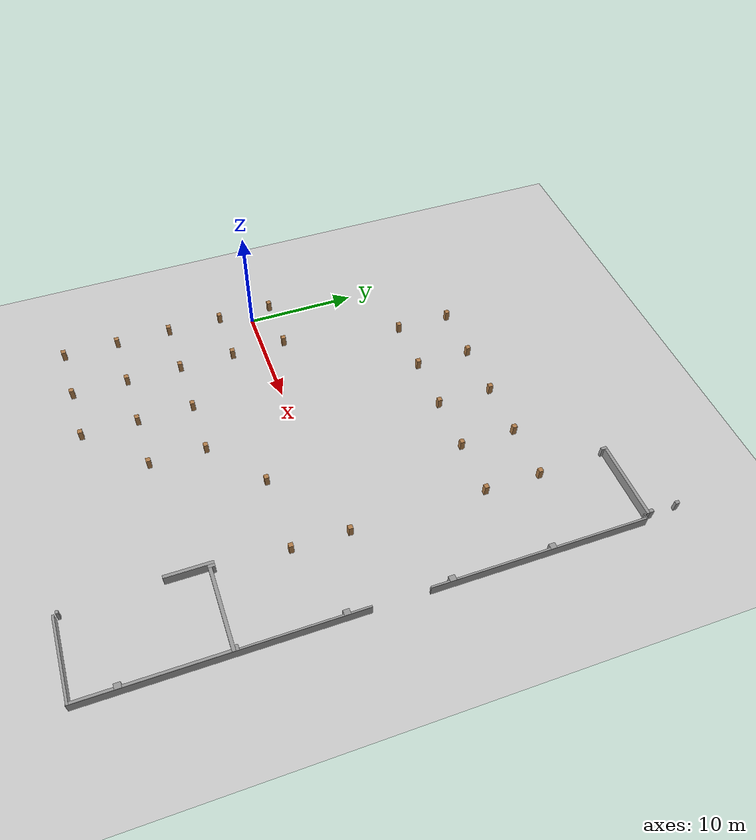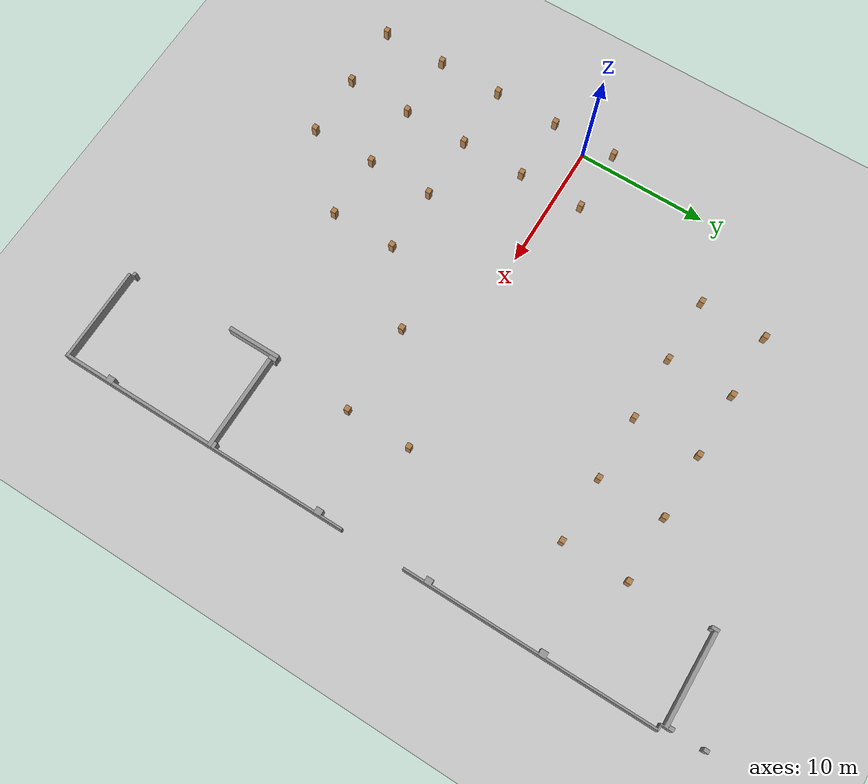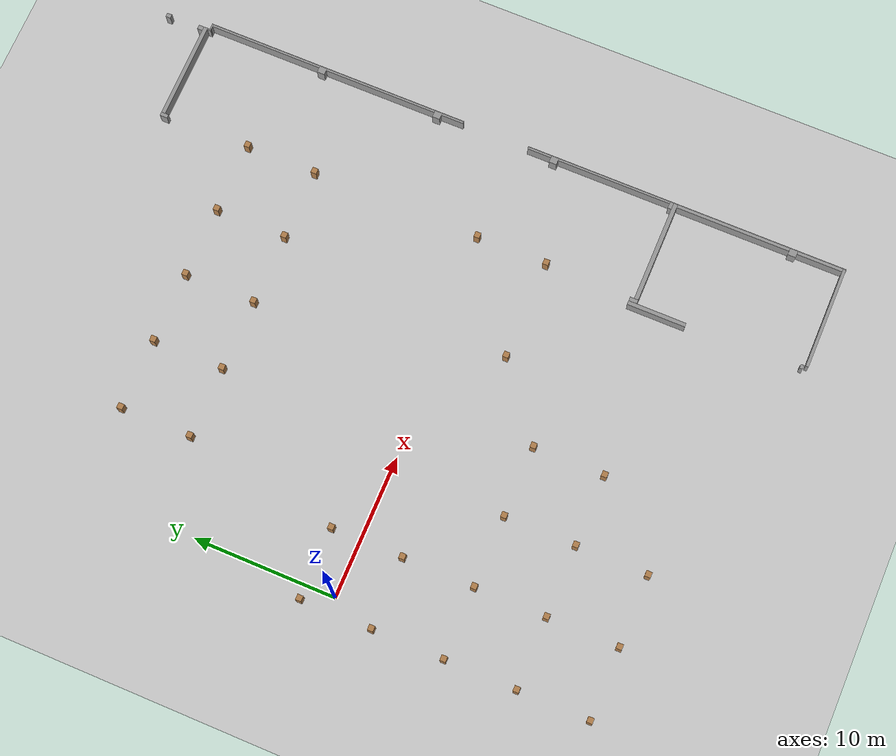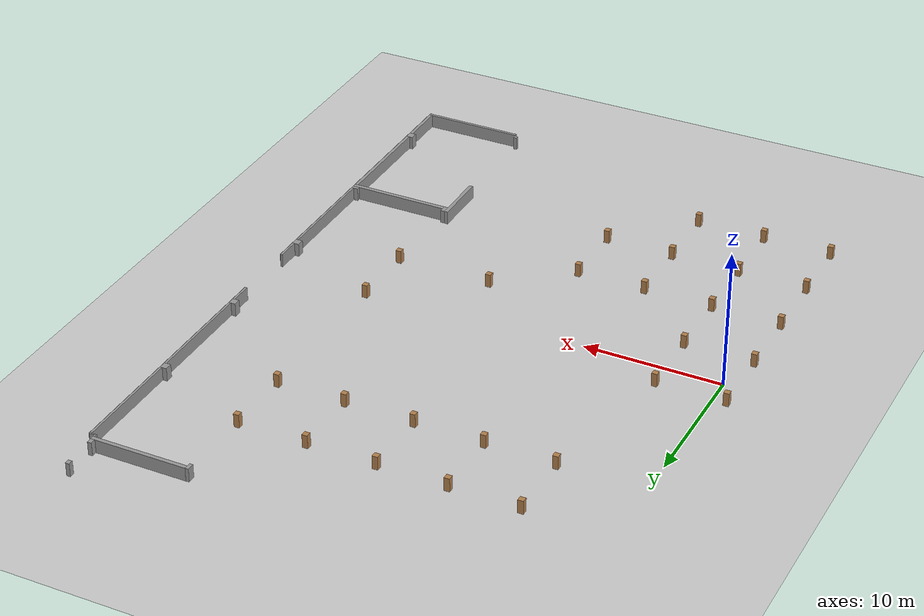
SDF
<sdf version="1.4">
 <world name="default">
  <model name="ground_plane">
   <static>1</static>
   <link name="link">
    <collision name="collision">
     <geometry><plane><normal>0 0 1</normal><size>100 100</size></plane></geometry>
     <surface><friction><ode><mu>100</mu><mu2>50</mu2></ode></friction></surface>
    </collision>
    <visual name="visual">
     <cast_shadows>0</cast_shadows>
     <geometry><plane><normal>0 0 1</normal><size>100 100</size></plane></geometry>
     <material>
      <script><uri>file://media/materials/scripts/gazebo.material</uri><name>Gazebo/Grey</name></script>
     </material>
    </visual>
    <velocity_decay><linear>0</linear><angular>0</angular></velocity_decay>
   </link>
  </model>
  <model name="walls">
   <static>1</static>
   <link name="Wall_118">
    <collision name="Wall_118_Collision">
     <geometry><box><size>4.11064 0.28085 1</size></box></geometry>
     <pose>10.6085 -32.4638 0.5 0 -0 0</pose>
    </collision>
    <visual name="Wall_118_Visual">
     <geometry><box><size>4.11064 0.28085 1</size></box></geometry>
     <material>
      <script><uri>file://media/materials/scripts/gazebo.material</uri><name>Gazebo/Grey</name></script>
     </material>
     <pose>10.6085 -32.4638 0.5 0 -0 0</pose>
    </visual>
    <velocity_decay><linear>0</linear><angular>0</angular></velocity_decay>
   </link>
   <link name="Wall_119">
    <collision name="Wall_119_Collision">
     <geometry><box><size>0.22979 0.28085 1</size></box></geometry>
     <pose>0.44681 -32.7447 0.5 0 -0 0</pose>
    </collision>
    <visual name="Wall_119_Visual">
     <geometry><box><size>0.22979 0.28085 1</size></box></geometry>
     <material>
      <script><uri>file://media/materials/scripts/gazebo.material</uri><name>Gazebo/Grey</name></script>
     </material>
     <pose>0.44681 -32.7447 0.5 0 -0 0</pose>
    </visual>
    <velocity_decay><linear>0</linear><angular>0</angular></velocity_decay>
   </link>
   <link name="Wall_120">
    <collision name="Wall_120_Collision">
     <geometry><box><size>0.58723 0.28085 1</size></box></geometry>
     <pose>12.3702 -32.7447 0.5 0 -0 0</pose>
    </collision>
    <visual name="Wall_120_Visual">
     <geometry><box><size>0.58723 0.28085 1</size></box></geometry>
     <material>
      <script><uri>file://media/materials/scripts/gazebo.material</uri><name>Gazebo/Grey</name></script>
     </material>
     <pose>12.3702 -32.7447 0.5 0 -0 0</pose>
    </visual>
    <velocity_decay><linear>0</linear><angular>0</angular></velocity_decay>
   </link>
   <link name="Wall_121">
    <collision name="Wall_121_Collision">
     <geometry><box><size>0.53617 0.25532 1</size></box></geometry>
     <pose>46.9149 -32.7574 0.5 0 -0 0</pose>
    </collision>
    <visual name="Wall_121_Visual">
     <geometry><box><size>0.53617 0.25532 1</size></box></geometry>
     <material>
      <script><uri>file://media/materials/scripts/gazebo.material</uri><name>Gazebo/Grey</name></script>
     </material>
     <pose>46.9149 -32.7574 0.5 0 -0 0</pose>
    </visual>
    <velocity_decay><linear>0</linear><angular>0</angular></velocity_decay>
   </link>
   <link name="Wall_122">
    <collision name="Wall_122_Collision">
     <geometry><box><size>0.20426 7.32766 1</size></box></geometry>
     <pose>0.12766 -36.5489 0.5 0 -0 0</pose>
    </collision>
    <visual name="Wall_122_Visual">
     <geometry><box><size>0.20426 7.32766 1</size></box></geometry>
     <material>
      <script><uri>file://media/materials/scripts/gazebo.material</uri><name>Gazebo/Grey</name></script>
     </material>
     <pose>0.12766 -36.5489 0.5 0 -0 0</pose>
    </visual>
    <velocity_decay><linear>0</linear><angular>0</angular></velocity_decay>
   </link>
   <link name="Wall_123">
    <collision name="Wall_123_Collision">
     <geometry><box><size>0.30638 7.32766 1</size></box></geometry>
     <pose>12.2298 -36.5489 0.5 0 -0 0</pose>
    </collision>
    <visual name="Wall_123_Visual">
     <geometry><box><size>0.30638 7.32766 1</size></box></geometry>
     <material>
      <script><uri>file://media/materials/scripts/gazebo.material</uri><name>Gazebo/Grey</name></script>
     </material>
     <pose>12.2298 -36.5489 0.5 0 -0 0</pose>
    </visual>
    <velocity_decay><linear>0</linear><angular>0</angular></velocity_decay>
   </link>
   <link name="Wall_124">
    <collision name="Wall_124_Collision">
     <geometry><box><size>0.28085 6.91915 1</size></box></geometry>
     <pose>47.0425 -36.3447 0.5 0 -0 0</pose>
    </collision>
    <visual name="Wall_124_Visual">
     <geometry><box><size>0.28085 6.91915 1</size></box></geometry>
     <material>
      <script><uri>file://media/materials/scripts/gazebo.material</uri><name>Gazebo/Grey</name></script>
     </material>
     <pose>47.0425 -36.3447 0.5 0 -0 0</pose>
    </visual>
    <velocity_decay><linear>0</linear><angular>0</angular></velocity_decay>
   </link>
   <link name="Wall_125">
    <collision name="Wall_125_Collision">
     <geometry><box><size>0.38298 0.30638 1</size></box></geometry>
     <pose>47.3745 -39.6511 0.5 0 -0 0</pose>
    </collision>
    <visual name="Wall_125_Visual">
     <geometry><box><size>0.38298 0.30638 1</size></box></geometry>
     <material>
      <script><uri>file://media/materials/scripts/gazebo.material</uri><name>Gazebo/Grey</name></script>
     </material>
     <pose>47.3745 -39.6511 0.5 0 -0 0</pose>
    </visual>
    <velocity_decay><linear>0</linear><angular>0</angular></velocity_decay>
   </link>
   <link name="Wall_126">
    <collision name="Wall_126_Collision">
     <geometry><box><size>0.35745 0.28085 1</size></box></geometry>
     <pose>49.8128 -39.6383 0.5 0 -0 0</pose>
    </collision>
    <visual name="Wall_126_Visual">
     <geometry><box><size>0.35745 0.28085 1</size></box></geometry>
     <material>
      <script><uri>file://media/materials/scripts/gazebo.material</uri><name>Gazebo/Grey</name></script>
     </material>
     <pose>49.8128 -39.6383 0.5 0 -0 0</pose>
    </visual>
    <velocity_decay><linear>0</linear><angular>0</angular></velocity_decay>
   </link>
   <link name="Wall_127">
    <collision name="Wall_127_Collision">
     <geometry><box><size>0.25532 0.10213 1</size></box></geometry>
     <pose>46.7745 -39.7532 0.5 0 -0 0</pose>
    </collision>
    <visual name="Wall_127_Visual">
     <geometry><box><size>0.25532 0.10213 1</size></box></geometry>
     <material>
      <script><uri>file://media/materials/scripts/gazebo.material</uri><name>Gazebo/Grey</name></script>
     </material>
     <pose>46.7745 -39.7532 0.5 0 -0 0</pose>
    </visual>
    <velocity_decay><linear>0</linear><angular>0</angular></velocity_decay>
   </link>
   <link name="Wall_128">
    <collision name="Wall_128_Collision">
     <geometry><box><size>0.5617 0.48511 1</size></box></geometry>
     <pose>3.72766 -39.9702 0.5 0 -0 0</pose>
    </collision>
    <visual name="Wall_128_Visual">
     <geometry><box><size>0.5617 0.48511 1</size></box></geometry>
     <material>
      <script><uri>file://media/materials/scripts/gazebo.material</uri><name>Gazebo/Grey</name></script>
     </material>
     <pose>3.72766 -39.9702 0.5 0 -0 0</pose>
    </visual>
    <velocity_decay><linear>0</linear><angular>0</angular></velocity_decay>
   </link>
   <link name="Wall_129">
    <collision name="Wall_129_Collision">
     <geometry><box><size>0.25532 0.48511 1</size></box></geometry>
     <pose>12.5106 -39.9702 0.5 0 -0 0</pose>
    </collision>
    <visual name="Wall_129_Visual">
     <geometry><box><size>0.25532 0.48511 1</size></box></geometry>
     <material>
      <script><uri>file://media/materials/scripts/gazebo.material</uri><name>Gazebo/Grey</name></script>
     </material>
     <pose>12.5106 -39.9702 0.5 0 -0 0</pose>
    </visual>
    <velocity_decay><linear>0</linear><angular>0</angular></velocity_decay>
   </link>
   <link name="Wall_130">
    <collision name="Wall_130_Collision">
     <geometry><box><size>0.53617 0.48511 1</size></box></geometry>
     <pose>21.0255 -39.9702 0.5 0 -0 0</pose>
    </collision>
    <visual name="Wall_130_Visual">
     <geometry><box><size>0.53617 0.48511 1</size></box></geometry>
     <material>
      <script><uri>file://media/materials/scripts/gazebo.material</uri><name>Gazebo/Grey</name></script>
     </material>
     <pose>21.0255 -39.9702 0.5 0 -0 0</pose>
    </visual>
    <velocity_decay><linear>0</linear><angular>0</angular></velocity_decay>
   </link>
   <link name="Wall_131">
    <collision name="Wall_131_Collision">
     <geometry><box><size>0.53617 0.48511 1</size></box></geometry>
     <pose>29.6553 -39.9702 0.5 0 -0 0</pose>
    </collision>
    <visual name="Wall_131_Visual">
     <geometry><box><size>0.53617 0.48511 1</size></box></geometry>
     <material>
      <script><uri>file://media/materials/scripts/gazebo.material</uri><name>Gazebo/Grey</name></script>
     </material>
     <pose>29.6553 -39.9702 0.5 0 -0 0</pose>
    </visual>
    <velocity_decay><linear>0</linear><angular>0</angular></velocity_decay>
   </link>
   <link name="Wall_132">
    <collision name="Wall_132_Collision">
     <geometry><box><size>0.53617 0.48511 1</size></box></geometry>
     <pose>38.2851 -39.9702 0.5 0 -0 0</pose>
    </collision>
    <visual name="Wall_132_Visual">
     <geometry><box><size>0.53617 0.48511 1</size></box></geometry>
     <material>
      <script><uri>file://media/materials/scripts/gazebo.material</uri><name>Gazebo/Grey</name></script>
     </material>
     <pose>38.2851 -39.9702 0.5 0 -0 0</pose>
    </visual>
    <velocity_decay><linear>0</linear><angular>0</angular></velocity_decay>
   </link>
   <link name="Wall_133">
    <collision name="Wall_133_Collision">
     <geometry><box><size>0.10213 0.40851 1</size></box></geometry>
     <pose>46.6979 -40.0085 0.5 0 -0 0</pose>
    </collision>
    <visual name="Wall_133_Visual">
     <geometry><box><size>0.10213 0.40851 1</size></box></geometry>
     <material>
      <script><uri>file://media/materials/scripts/gazebo.material</uri><name>Gazebo/Grey</name></script>
     </material>
     <pose>46.6979 -40.0085 0.5 0 -0 0</pose>
    </visual>
    <velocity_decay><linear>0</linear><angular>0</angular></velocity_decay>
   </link>
   <link name="Wall_134">
    <collision name="Wall_134_Collision">
     <geometry><box><size>0.02553 0.22979 1</size></box></geometry>
     <pose>0.01277 -40.0979 0.5 0 -0 0</pose>
    </collision>
    <visual name="Wall_134_Visual">
     <geometry><box><size>0.02553 0.22979 1</size></box></geometry>
     <material>
      <script><uri>file://media/materials/scripts/gazebo.material</uri><name>Gazebo/Grey</name></script>
     </material>
     <pose>0.01277 -40.0979 0.5 0 -0 0</pose>
    </visual>
    <velocity_decay><linear>0</linear><angular>0</angular></velocity_decay>
   </link>
   <link name="Wall_135">
    <collision name="Wall_135_Collision">
     <geometry><box><size>3.21702 0.22979 1</size></box></geometry>
     <pose>1.8383 -40.0979 0.5 0 -0 0</pose>
    </collision>
    <visual name="Wall_135_Visual">
     <geometry><box><size>3.21702 0.22979 1</size></box></geometry>
     <material>
      <script><uri>file://media/materials/scripts/gazebo.material</uri><name>Gazebo/Grey</name></script>
     </material>
     <pose>1.8383 -40.0979 0.5 0 -0 0</pose>
    </visual>
    <velocity_decay><linear>0</linear><angular>0</angular></velocity_decay>
   </link>
   <link name="Wall_136">
    <collision name="Wall_136_Collision">
     <geometry><box><size>8.06809 0.22979 1</size></box></geometry>
     <pose>8.04255 -40.0979 0.5 0 -0 0</pose>
    </collision>
    <visual name="Wall_136_Visual">
     <geometry><box><size>8.06809 0.22979 1</size></box></geometry>
     <material>
      <script><uri>file://media/materials/scripts/gazebo.material</uri><name>Gazebo/Grey</name></script>
     </material>
     <pose>8.04255 -40.0979 0.5 0 -0 0</pose>
    </visual>
    <velocity_decay><linear>0</linear><angular>0</angular></velocity_decay>
   </link>
   <link name="Wall_137">
    <collision name="Wall_137_Collision">
     <geometry><box><size>8.11915 0.15319 1</size></box></geometry>
     <pose>16.6979 -40.1362 0.5 0 -0 0</pose>
    </collision>
    <visual name="Wall_137_Visual">
     <geometry><box><size>8.11915 0.15319 1</size></box></geometry>
     <material>
      <script><uri>file://media/materials/scripts/gazebo.material</uri><name>Gazebo/Grey</name></script>
     </material>
     <pose>16.6979 -40.1362 0.5 0 -0 0</pose>
    </visual>
    <velocity_decay><linear>0</linear><angular>0</angular></velocity_decay>
   </link>
   <link name="Wall_138">
    <collision name="Wall_138_Collision">
     <geometry><box><size>1.71064 0.15319 1</size></box></geometry>
     <pose>22.1489 -40.1362 0.5 0 -0 0</pose>
    </collision>
    <visual name="Wall_138_Visual">
     <geometry><box><size>1.71064 0.15319 1</size></box></geometry>
     <material>
      <script><uri>file://media/materials/scripts/gazebo.material</uri><name>Gazebo/Grey</name></script>
     </material>
     <pose>22.1489 -40.1362 0.5 0 -0 0</pose>
    </visual>
    <velocity_decay><linear>0</linear><angular>0</angular></velocity_decay>
   </link>
   <link name="Wall_139">
    <collision name="Wall_139_Collision">
     <geometry><box><size>1.60851 0.15319 1</size></box></geometry>
     <pose>28.583 -40.1362 0.5 0 -0 0</pose>
    </collision>
    <visual name="Wall_139_Visual">
     <geometry><box><size>1.60851 0.15319 1</size></box></geometry>
     <material>
      <script><uri>file://media/materials/scripts/gazebo.material</uri><name>Gazebo/Grey</name></script>
     </material>
     <pose>28.583 -40.1362 0.5 0 -0 0</pose>
    </visual>
    <velocity_decay><linear>0</linear><angular>0</angular></velocity_decay>
   </link>
   <link name="Wall_140">
    <collision name="Wall_140_Collision">
     <geometry><box><size>8.09362 0.15319 1</size></box></geometry>
     <pose>33.9702 -40.1362 0.5 0 -0 0</pose>
    </collision>
    <visual name="Wall_140_Visual">
     <geometry><box><size>8.09362 0.15319 1</size></box></geometry>
     <material>
      <script><uri>file://media/materials/scripts/gazebo.material</uri><name>Gazebo/Grey</name></script>
     </material>
     <pose>33.9702 -40.1362 0.5 0 -0 0</pose>
    </visual>
    <velocity_decay><linear>0</linear><angular>0</angular></velocity_decay>
   </link>
   <link name="Wall_141">
    <collision name="Wall_141_Collision">
     <geometry><box><size>8.09362 0.15319 1</size></box></geometry>
     <pose>42.6 -40.1362 0.5 0 -0 0</pose>
    </collision>
    <visual name="Wall_141_Visual">
     <geometry><box><size>8.09362 0.15319 1</size></box></geometry>
     <material>
      <script><uri>file://media/materials/scripts/gazebo.material</uri><name>Gazebo/Grey</name></script>
     </material>
     <pose>42.6 -40.1362 0.5 0 -0 0</pose>
    </visual>
    <velocity_decay><linear>0</linear><angular>0</angular></velocity_decay>
   </link>
   <link name="Wall_142">
    <collision name="Wall_142_Collision">
     <geometry><box><size>23.0043 0.02553 1</size></box></geometry>
     <pose>11.5021 -40.2255 0.5 0 -0 0</pose>
    </collision>
    <visual name="Wall_142_Visual">
     <geometry><box><size>23.0043 0.02553 1</size></box></geometry>
     <material>
      <script><uri>file://media/materials/scripts/gazebo.material</uri><name>Gazebo/Grey</name></script>
     </material>
     <pose>11.5021 -40.2255 0.5 0 -0 0</pose>
    </visual>
    <velocity_decay><linear>0</linear><angular>0</angular></velocity_decay>
   </link>
   <link name="Wall_143">
    <collision name="Wall_143_Collision">
     <geometry><box><size>18.9702 0.02553 1</size></box></geometry>
     <pose>37.2638 -40.2255 0.5 0 -0 0</pose>
    </collision>
    <visual name="Wall_143_Visual">
     <geometry><box><size>18.9702 0.02553 1</size></box></geometry>
     <material>
      <script><uri>file://media/materials/scripts/gazebo.material</uri><name>Gazebo/Grey</name></script>
     </material>
     <pose>37.2638 -40.2255 0.5 0 -0 0</pose>
    </visual>
    <velocity_decay><linear>0</linear><angular>0</angular></velocity_decay>
   </link>
   <pose>-7 -22.75 0 0 -0 1.5708</pose>
  </model>
  <model name="box_0">
   <static>0</static>
   <link name="link">
    <collision name="colision"><geometry><box><size>0.4 0.4 1</size></box></geometry></collision>
    <visual name="visual">
     <geometry><box><size>0.4 0.4 1</size></box></geometry>
     <material>
      <script><uri>file://media/materials/scripts/gazebo.material</uri><name>Gazebo/WoodPallet</name></script>
     </material>
    </visual>
    <velocity_decay><linear>0</linear><angular>0</angular></velocity_decay>
    <inertial>
     <inertia><ixx>1</ixx><ixy>0</ixy><ixz>0</ixz><iyy>1</iyy><iyz>0</iyz><izz>1</izz></inertia>
     <mass>1</mass>
    </inertial>
   </link>
   <pose>-0.999997 2 0.5 -1e-06 -1e-06 -0.000109</pose>
  </model>
  <model name="box_1">
   <static>0</static>
   <link name="link">
    <collision name="colision"><geometry><box><size>0.4 0.4 1</size></box></geometry></collision>
    <visual name="visual">
     <geometry><box><size>0.4 0.4 1</size></box></geometry>
     <material>
      <script><uri>file://media/materials/scripts/gazebo.material</uri><name>Gazebo/WoodPallet</name></script>
     </material>
    </visual>
    <velocity_decay><linear>0</linear><angular>0</angular></velocity_decay>
    <inertial>
     <inertia><ixx>1</ixx><ixy>0</ixy><ixz>0</ixz><iyy>1</iyy><iyz>0</iyz><izz>1</izz></inertia>
     <mass>1</mass>
    </inertial>
   </link>
   <pose>-0.999997 -2.99999 0.5 1.61559e-27 1e-06 -1.2e-05</pose>
  </model>
  <model name="box_2">
   <static>0</static>
   <link name="link">
    <collision name="colision"><geometry><box><size>0.4 0.4 1</size></box></geometry></collision>
    <visual name="visual">
     <geometry><box><size>0.4 0.4 1</size></box></geometry>
     <material>
      <script><uri>file://media/materials/scripts/gazebo.material</uri><name>Gazebo/WoodPallet</name></script>
     </material>
    </visual>
    <velocity_decay><linear>0</linear><angular>0</angular></velocity_decay>
    <inertial>
     <inertia><ixx>1</ixx><ixy>0</ixy><ixz>0</ixz><iyy>1</iyy><iyz>0</iyz><izz>1</izz></inertia>
     <mass>1</mass>
    </inertial>
   </link>
   <pose>-0.999999 -8 0.5 0 -0 6e-06</pose>
  </model>
  <model name="box_3">
   <static>0</static>
   <link name="link">
    <collision name="colision"><geometry><box><size>0.4 0.4 1</size></box></geometry></collision>
    <visual name="visual">
     <geometry><box><size>0.4 0.4 1</size></box></geometry>
     <material>
      <script><uri>file://media/materials/scripts/gazebo.material</uri><name>Gazebo/WoodPallet</name></script>
     </material>
    </visual>
    <velocity_decay><linear>0</linear><angular>0</angular></velocity_decay>
    <inertial>
     <inertia><ixx>1</ixx><ixy>0</ixy><ixz>0</ixz><iyy>1</iyy><iyz>0</iyz><izz>1</izz></inertia>
     <mass>1</mass>
    </inertial>
   </link>
   <pose>-0.999998 -13 0.5 1e-06 1e-06 3.7e-05</pose>
  </model>
  <model name="box_4">
   <static>0</static>
   <link name="link">
    <collision name="colision"><geometry><box><size>0.4 0.4 1</size></box></geometry></collision>
    <visual name="visual">
     <geometry><box><size>0.4 0.4 1</size></box></geometry>
     <material>
      <script><uri>file://media/materials/scripts/gazebo.material</uri><name>Gazebo/WoodPallet</name></script>
     </material>
    </visual>
    <velocity_decay><linear>0</linear><angular>0</angular></velocity_decay>
    <inertial>
     <inertia><ixx>1</ixx><ixy>0</ixy><ixz>0</ixz><iyy>1</iyy><iyz>0</iyz><izz>1</izz></inertia>
     <mass>1</mass>
    </inertial>
   </link>
   <pose>-1 -18 0.5 -1e-06 -1e-06 -0.000144</pose>
  </model>
  <model name="box_5">
   <static>0</static>
   <link name="link">
    <collision name="colision"><geometry><box><size>0.4 0.4 1</size></box></geometry></collision>
    <visual name="visual">
     <geometry><box><size>0.4 0.4 1</size></box></geometry>
     <material>
      <script><uri>file://media/materials/scripts/gazebo.material</uri><name>Gazebo/WoodPallet</name></script>
     </material>
    </visual>
    <velocity_decay><linear>0</linear><angular>0</angular></velocity_decay>
    <inertial>
     <inertia><ixx>1</ixx><ixy>0</ixy><ixz>0</ixz><iyy>1</iyy><iyz>0</iyz><izz>1</izz></inertia>
     <mass>1</mass>
    </inertial>
   </link>
   <pose>4 -18 0.5 1e-06 -2.58494e-26 -0.000212</pose>
  </model>
  <model name="box_6">
   <static>0</static>
   <link name="link">
    <collision name="colision"><geometry><box><size>0.4 0.4 1</size></box></geometry></collision>
    <visual name="visual">
     <geometry><box><size>0.4 0.4 1</size></box></geometry>
     <material>
      <script><uri>file://media/materials/scripts/gazebo.material</uri><name>Gazebo/WoodPallet</name></script>
     </material>
    </visual>
    <velocity_decay><linear>0</linear><angular>0</angular></velocity_decay>
    <inertial>
     <inertia><ixx>1</ixx><ixy>0</ixy><ixz>0</ixz><iyy>1</iyy><iyz>0</iyz><izz>1</izz></inertia>
     <mass>1</mass>
    </inertial>
   </link>
   <pose>9.00001 -18 0.500001 -3e-06 2e-06 -1.1e-05</pose>
  </model>
  <model name="box_7">
   <static>0</static>
   <link name="link">
    <collision name="colision"><geometry><box><size>0.4 0.4 1</size></box></geometry></collision>
    <visual name="visual">
     <geometry><box><size>0.4 0.4 1</size></box></geometry>
     <material>
      <script><uri>file://media/materials/scripts/gazebo.material</uri><name>Gazebo/WoodPallet</name></script>
     </material>
    </visual>
    <velocity_decay><linear>0</linear><angular>0</angular></velocity_decay>
    <inertial>
     <inertia><ixx>1</ixx><ixy>0</ixy><ixz>0</ixz><iyy>1</iyy><iyz>0</iyz><izz>1</izz></inertia>
     <mass>1</mass>
    </inertial>
   </link>
   <pose>4 -13 0.5 -1e-06 1e-06 -5.7e-05</pose>
  </model>
  <model name="box_8">
   <static>0</static>
   <link name="link">
    <collision name="colision"><geometry><box><size>0.4 0.4 1</size></box></geometry></collision>
    <visual name="visual">
     <geometry><box><size>0.4 0.4 1</size></box></geometry>
     <material>
      <script><uri>file://media/materials/scripts/gazebo.material</uri><name>Gazebo/WoodPallet</name></script>
     </material>
    </visual>
    <velocity_decay><linear>0</linear><angular>0</angular></velocity_decay>
    <inertial>
     <inertia><ixx>1</ixx><ixy>0</ixy><ixz>0</ixz><iyy>1</iyy><iyz>0</iyz><izz>1</izz></inertia>
     <mass>1</mass>
    </inertial>
   </link>
   <pose>9 -13 0.500001 5e-06 -2e-06 9e-06</pose>
  </model>
  <model name="box_9">
   <static>0</static>
   <link name="link">
    <collision name="colision"><geometry><box><size>0.4 0.4 1</size></box></geometry></collision>
    <visual name="visual">
     <geometry><box><size>0.4 0.4 1</size></box></geometry>
     <material>
      <script><uri>file://media/materials/scripts/gazebo.material</uri><name>Gazebo/WoodPallet</name></script>
     </material>
    </visual>
    <velocity_decay><linear>0</linear><angular>0</angular></velocity_decay>
    <inertial>
     <inertia><ixx>1</ixx><ixy>0</ixy><ixz>0</ixz><iyy>1</iyy><iyz>0</iyz><izz>1</izz></inertia>
     <mass>1</mass>
    </inertial>
   </link>
   <pose>14 -13 0.5 -2e-06 -1.29247e-26 -3.3e-05</pose>
  </model>
  <model name="box_10">
   <static>0</static>
   <link name="link">
    <collision name="colision"><geometry><box><size>0.4 0.4 1</size></box></geometry></collision>
    <visual name="visual">
     <geometry><box><size>0.4 0.4 1</size></box></geometry>
     <material>
      <script><uri>file://media/materials/scripts/gazebo.material</uri><name>Gazebo/WoodPallet</name></script>
     </material>
    </visual>
    <velocity_decay><linear>0</linear><angular>0</angular></velocity_decay>
    <inertial>
     <inertia><ixx>1</ixx><ixy>0</ixy><ixz>0</ixz><iyy>1</iyy><iyz>0</iyz><izz>1</izz></inertia>
     <mass>1</mass>
    </inertial>
   </link>
   <pose>14 -8 0.5 2e-06 -5.16988e-26 -0.000135</pose>
  </model>
  <model name="box_11">
   <static>0</static>
   <link name="link">
    <collision name="colision"><geometry><box><size>0.4 0.4 1</size></box></geometry></collision>
    <visual name="visual">
     <geometry><box><size>0.4 0.4 1</size></box></geometry>
     <material>
      <script><uri>file://media/materials/scripts/gazebo.material</uri><name>Gazebo/WoodPallet</name></script>
     </material>
    </visual>
    <velocity_decay><linear>0</linear><angular>0</angular></velocity_decay>
    <inertial>
     <inertia><ixx>1</ixx><ixy>0</ixy><ixz>0</ixz><iyy>1</iyy><iyz>0</iyz><izz>1</izz></inertia>
     <mass>1</mass>
    </inertial>
   </link>
   <pose>4 -8 0.5 0 1e-06 -7.9e-05</pose>
  </model>
  <model name="box_12">
   <static>0</static>
   <link name="link">
    <collision name="colision"><geometry><box><size>0.4 0.4 1</size></box></geometry></collision>
    <visual name="visual">
     <geometry><box><size>0.4 0.4 1</size></box></geometry>
     <material>
      <script><uri>file://media/materials/scripts/gazebo.material</uri><name>Gazebo/WoodPallet</name></script>
     </material>
    </visual>
    <velocity_decay><linear>0</linear><angular>0</angular></velocity_decay>
    <inertial>
     <inertia><ixx>1</ixx><ixy>0</ixy><ixz>0</ixz><iyy>1</iyy><iyz>0</iyz><izz>1</izz></inertia>
     <mass>1</mass>
    </inertial>
   </link>
   <pose>4 -3 0.5 -1.29247e-26 1e-06 -9.9e-05</pose>
  </model>
  <model name="box_13">
   <static>0</static>
   <link name="link">
    <collision name="colision"><geometry><box><size>0.4 0.4 1</size></box></geometry></collision>
    <visual name="visual">
     <geometry><box><size>0.4 0.4 1</size></box></geometry>
     <material>
      <script><uri>file://media/materials/scripts/gazebo.material</uri><name>Gazebo/WoodPallet</name></script>
     </material>
    </visual>
    <velocity_decay><linear>0</linear><angular>0</angular></velocity_decay>
    <inertial>
     <inertia><ixx>1</ixx><ixy>0</ixy><ixz>0</ixz><iyy>1</iyy><iyz>0</iyz><izz>1</izz></inertia>
     <mass>1</mass>
    </inertial>
   </link>
   <pose>4 2.00001 0.5 1e-06 -2.58494e-26 -0.000168</pose>
  </model>
  <model name="box_14">
   <static>0</static>
   <link name="link">
    <collision name="colision"><geometry><box><size>0.4 0.4 1</size></box></geometry></collision>
    <visual name="visual">
     <geometry><box><size>0.4 0.4 1</size></box></geometry>
     <material>
      <script><uri>file://media/materials/scripts/gazebo.material</uri><name>Gazebo/WoodPallet</name></script>
     </material>
    </visual>
    <velocity_decay><linear>0</linear><angular>0</angular></velocity_decay>
    <inertial>
     <inertia><ixx>1</ixx><ixy>0</ixy><ixz>0</ixz><iyy>1</iyy><iyz>0</iyz><izz>1</izz></inertia>
     <mass>1</mass>
    </inertial>
   </link>
   <pose>9 -7.99999 0.5 0 -1e-06 -0.00014</pose>
  </model>
  <model name="box_16">
   <static>0</static>
   <link name="link">
    <collision name="colision"><geometry><box><size>0.4 0.4 1</size></box></geometry></collision>
    <visual name="visual">
     <geometry><box><size>0.4 0.4 1</size></box></geometry>
     <material>
      <script><uri>file://media/materials/scripts/gazebo.material</uri><name>Gazebo/WoodPallet</name></script>
     </material>
    </visual>
    <velocity_decay><linear>0</linear><angular>0</angular></velocity_decay>
    <inertial>
     <inertia><ixx>1</ixx><ixy>0</ixy><ixz>0</ixz><iyy>1</iyy><iyz>0</iyz><izz>1</izz></inertia>
     <mass>1</mass>
    </inertial>
   </link>
   <pose>6 18 0.5 -1e-06 -1e-06 -0.000101</pose>
  </model>
  <model name="box_17">
   <static>0</static>
   <link name="link">
    <collision name="colision"><geometry><box><size>0.4 0.4 1</size></box></geometry></collision>
    <visual name="visual">
     <geometry><box><size>0.4 0.4 1</size></box></geometry>
     <material>
      <script><uri>file://media/materials/scripts/gazebo.material</uri><name>Gazebo/WoodPallet</name></script>
     </material>
    </visual>
    <velocity_decay><linear>0</linear><angular>0</angular></velocity_decay>
    <inertial>
     <inertia><ixx>1</ixx><ixy>0</ixy><ixz>0</ixz><iyy>1</iyy><iyz>0</iyz><izz>1</izz></inertia>
     <mass>1</mass>
    </inertial>
   </link>
   <pose>6 13 0.5 1.29247e-26 -1e-06 -0.000113</pose>
  </model>
  <model name="box_18">
   <static>0</static>
   <link name="link">
    <collision name="colision"><geometry><box><size>0.4 0.4 1</size></box></geometry></collision>
    <visual name="visual">
     <geometry><box><size>0.4 0.4 1</size></box></geometry>
     <material>
      <script><uri>file://media/materials/scripts/gazebo.material</uri><name>Gazebo/WoodPallet</name></script>
     </material>
    </visual>
    <velocity_decay><linear>0</linear><angular>0</angular></velocity_decay>
    <inertial>
     <inertia><ixx>1</ixx><ixy>0</ixy><ixz>0</ixz><iyy>1</iyy><iyz>0</iyz><izz>1</izz></inertia>
     <mass>1</mass>
    </inertial>
   </link>
   <pose>11 18 0.5 -2e-06 2.58494e-26 -9.1e-05</pose>
  </model>
  <model name="box_19">
   <static>0</static>
   <link name="link">
    <collision name="colision"><geometry><box><size>0.4 0.4 1</size></box></geometry></collision>
    <visual name="visual">
     <geometry><box><size>0.4 0.4 1</size></box></geometry>
     <material>
      <script><uri>file://media/materials/scripts/gazebo.material</uri><name>Gazebo/WoodPallet</name></script>
     </material>
    </visual>
    <velocity_decay><linear>0</linear><angular>0</angular></velocity_decay>
    <inertial>
     <inertia><ixx>1</ixx><ixy>0</ixy><ixz>0</ixz><iyy>1</iyy><iyz>0</iyz><izz>1</izz></inertia>
     <mass>1</mass>
    </inertial>
   </link>
   <pose>16 18 0.5 1e-06 2e-06 -1.5e-05</pose>
  </model>
  <model name="box_20">
   <static>0</static>
   <link name="link">
    <collision name="colision"><geometry><box><size>0.4 0.4 1</size></box></geometry></collision>
    <visual name="visual">
     <geometry><box><size>0.4 0.4 1</size></box></geometry>
     <material>
      <script><uri>file://media/materials/scripts/gazebo.material</uri><name>Gazebo/WoodPallet</name></script>
     </material>
    </visual>
    <velocity_decay><linear>0</linear><angular>0</angular></velocity_decay>
    <inertial>
     <inertia><ixx>1</ixx><ixy>0</ixy><ixz>0</ixz><iyy>1</iyy><iyz>0</iyz><izz>1</izz></inertia>
     <mass>1</mass>
    </inertial>
   </link>
   <pose>11 13 0.5 -1e-06 -0 -4.8e-05</pose>
  </model>
  <model name="box_21">
   <static>0</static>
   <link name="link">
    <collision name="colision"><geometry><box><size>0.4 0.4 1</size></box></geometry></collision>
    <visual name="visual">
     <geometry><box><size>0.4 0.4 1</size></box></geometry>
     <material>
      <script><uri>file://media/materials/scripts/gazebo.material</uri><name>Gazebo/WoodPallet</name></script>
     </material>
    </visual>
    <velocity_decay><linear>0</linear><angular>0</angular></velocity_decay>
    <inertial>
     <inertia><ixx>1</ixx><ixy>0</ixy><ixz>0</ixz><iyy>1</iyy><iyz>0</iyz><izz>1</izz></inertia>
     <mass>1</mass>
    </inertial>
   </link>
   <pose>16 13 0.499999 -2e-06 -2e-06 -0.00016</pose>
  </model>
  <model name="box_22">
   <static>0</static>
   <link name="link">
    <collision name="colision"><geometry><box><size>0.4 0.4 1</size></box></geometry></collision>
    <visual name="visual">
     <geometry><box><size>0.4 0.4 1</size></box></geometry>
     <material>
      <script><uri>file://media/materials/scripts/gazebo.material</uri><name>Gazebo/WoodPallet</name></script>
     </material>
    </visual>
    <velocity_decay><linear>0</linear><angular>0</angular></velocity_decay>
    <inertial>
     <inertia><ixx>1</ixx><ixy>0</ixy><ixz>0</ixz><iyy>1</iyy><iyz>0</iyz><izz>1</izz></inertia>
     <mass>1</mass>
    </inertial>
   </link>
   <pose>21 13 0.5 -0 -0 -3e-05</pose>
  </model>
  <model name="box_23">
   <static>0</static>
   <link name="link">
    <collision name="colision"><geometry><box><size>0.4 0.4 1</size></box></geometry></collision>
    <visual name="visual">
     <geometry><box><size>0.4 0.4 1</size></box></geometry>
     <material>
      <script><uri>file://media/materials/scripts/gazebo.material</uri><name>Gazebo/WoodPallet</name></script>
     </material>
    </visual>
    <velocity_decay><linear>0</linear><angular>0</angular></velocity_decay>
    <inertial>
     <inertia><ixx>1</ixx><ixy>0</ixy><ixz>0</ixz><iyy>1</iyy><iyz>0</iyz><izz>1</izz></inertia>
     <mass>1</mass>
    </inertial>
   </link>
   <pose>21 18 0.5 -1e-06 1e-06 -0.000177</pose>
  </model>
  <model name="box_24">
   <static>0</static>
   <link name="link">
    <collision name="colision"><geometry><box><size>0.4 0.4 1</size></box></geometry></collision>
    <visual name="visual">
     <geometry><box><size>0.4 0.4 1</size></box></geometry>
     <material>
      <script><uri>file://media/materials/scripts/gazebo.material</uri><name>Gazebo/WoodPallet</name></script>
     </material>
    </visual>
    <velocity_decay><linear>0</linear><angular>0</angular></velocity_decay>
    <inertial>
     <inertia><ixx>1</ixx><ixy>0</ixy><ixz>0</ixz><iyy>1</iyy><iyz>0</iyz><izz>1</izz></inertia>
     <mass>1</mass>
    </inertial>
   </link>
   <pose>26 13 0.500001 6e-06 -0 -2.9e-05</pose>
  </model>
  <model name="box_25">
   <static>0</static>
   <link name="link">
    <collision name="colision"><geometry><box><size>0.4 0.4 1</size></box></geometry></collision>
    <visual name="visual">
     <geometry><box><size>0.4 0.4 1</size></box></geometry>
     <material>
      <script><uri>file://media/materials/scripts/gazebo.material</uri><name>Gazebo/WoodPallet</name></script>
     </material>
    </visual>
    <velocity_decay><linear>0</linear><angular>0</angular></velocity_decay>
    <inertial>
     <inertia><ixx>1</ixx><ixy>0</ixy><ixz>0</ixz><iyy>1</iyy><iyz>0</iyz><izz>1</izz></inertia>
     <mass>1</mass>
    </inertial>
   </link>
   <pose>26 18 0.499999 2e-06 2e-06 -0.000104</pose>
  </model>
  <model name="box_26">
   <static>0</static>
   <link name="link">
    <collision name="colision"><geometry><box><size>0.4 0.4 1</size></box></geometry></collision>
    <visual name="visual">
     <geometry><box><size>0.4 0.4 1</size></box></geometry>
     <material>
      <script><uri>file://media/materials/scripts/gazebo.material</uri><name>Gazebo/WoodPallet</name></script>
     </material>
    </visual>
    <velocity_decay><linear>0</linear><angular>0</angular></velocity_decay>
    <inertial>
     <inertia><ixx>1</ixx><ixy>0</ixy><ixz>0</ixz><iyy>1</iyy><iyz>0</iyz><izz>1</izz></inertia>
     <mass>1</mass>
    </inertial>
   </link>
   <pose>26 1 0.5 1e-06 -1e-06 -0.000131</pose>
  </model>
  <model name="box_27">
   <static>0</static>
   <link name="link">
    <collision name="colision"><geometry><box><size>0.4 0.4 1</size></box></geometry></collision>
    <visual name="visual">
     <geometry><box><size>0.4 0.4 1</size></box></geometry>
     <material>
      <script><uri>file://media/materials/scripts/gazebo.material</uri><name>Gazebo/WoodPallet</name></script>
     </material>
    </visual>
    <velocity_decay><linear>0</linear><angular>0</angular></velocity_decay>
    <inertial>
     <inertia><ixx>1</ixx><ixy>0</ixy><ixz>0</ixz><iyy>1</iyy><iyz>0</iyz><izz>1</izz></inertia>
     <mass>1</mass>
    </inertial>
   </link>
   <pose>26 -3.99999 0.5 -1e-06 -1e-06 -2.9e-05</pose>
  </model>
  <model name="box_28">
   <static>0</static>
   <link name="link">
    <collision name="colision"><geometry><box><size>0.4 0.4 1</size></box></geometry></collision>
    <visual name="visual">
     <geometry><box><size>0.4 0.4 1</size></box></geometry>
     <material>
      <script><uri>file://media/materials/scripts/gazebo.material</uri><name>Gazebo/WoodPallet</name></script>
     </material>
    </visual>
    <velocity_decay><linear>0</linear><angular>0</angular></velocity_decay>
    <inertial>
     <inertia><ixx>1</ixx><ixy>0</ixy><ixz>0</ixz><iyy>1</iyy><iyz>0</iyz><izz>1</izz></inertia>
     <mass>1</mass>
    </inertial>
   </link>
   <pose>19 -3.99999 0.500001 -4e-06 -2.58494e-26 -4.4e-05</pose>
  </model>
 </world>
</sdf>
